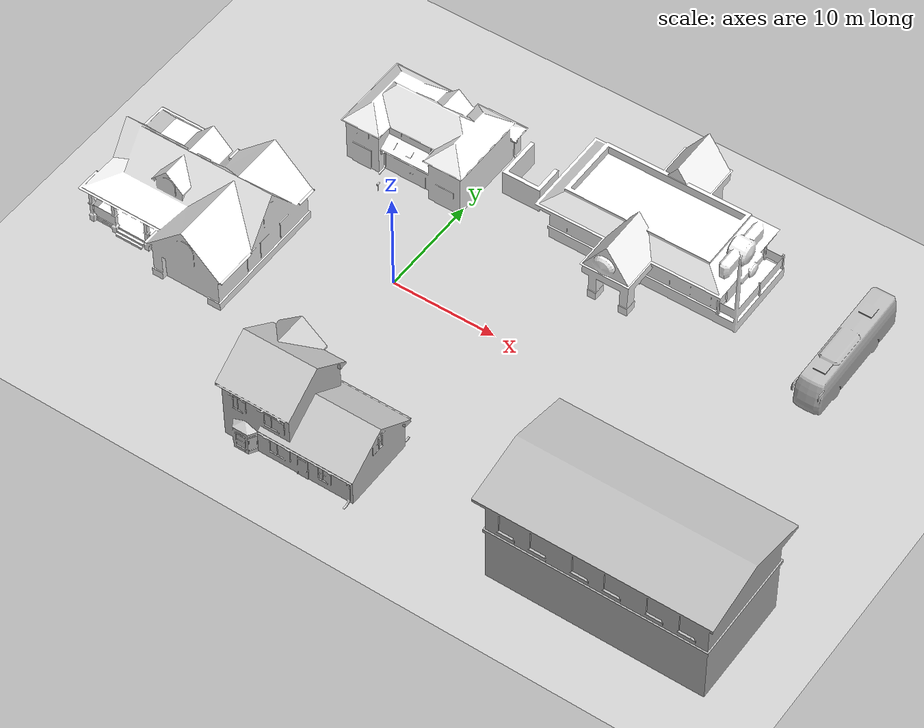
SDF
<sdf version="1.7">
 <world name="default">
  <light name="sun" type="directional">
   <pose>0 0 10 0 -0 0</pose>
   <diffuse>0.8 0.8 0.8 1</diffuse>
   <specular>0.2 0.2 0.2 1</specular>
   <attenuation>
    <range>1000</range>
    <constant>0.9</constant>
    <linear>0.01</linear>
    <quadratic>0.001</quadratic>
   </attenuation>
   <direction>-0.5 0.1 -0.9</direction>
   <spot><inner_angle>0</inner_angle><outer_angle>0</outer_angle><falloff>0</falloff></spot>
  </light>
  <model name="ground_plane">
   <static>1</static>
   <link name="link">
    <collision name="collision">
     <geometry><plane><normal>0 0 1</normal><size>100 100</size></plane></geometry>
     <surface>
      <contact><collide_bitmask>65535</collide_bitmask></contact>
      <friction><ode><mu>100</mu><mu2>50</mu2></ode></friction>
     </surface>
    </collision>
    <visual name="visual">
     <cast_shadows>0</cast_shadows>
     <geometry><plane><normal>0 0 1</normal><size>100 100</size></plane></geometry>
     <material>
      <script><uri>file://media/materials/scripts/gazebo.material</uri><name>Gazebo/Grey</name></script>
     </material>
    </visual>
   </link>
  </model>
  <gravity>0 0 -9.8</gravity>
  <magnetic_field>6e-06 2.3e-05 -4.2e-05</magnetic_field>
  <atmosphere type="adiabatic"/>
  <physics type="ode">
   <max_step_size>0.001</max_step_size>
   <real_time_factor>1</real_time_factor>
   <real_time_update_rate>1000</real_time_update_rate>
  </physics>
  <scene><ambient>0.4 0.4 0.4 1</ambient><background>0.7 0.7 0.7 1</background><shadows>1</shadows></scene>
  <spherical_coordinates>
   <surface_model>EARTH_WGS84</surface_model>
   <latitude_deg>0</latitude_deg>
   <longitude_deg>0</longitude_deg>
   <elevation>0</elevation>
   <heading_deg>0</heading_deg>
  </spherical_coordinates>
  <model name="House 1">
   <static>1</static>
   <link name="link">
    <collision name="collision">
     <geometry><mesh><uri>model://house_1/meshes/house_1.dae</uri><scale>1.5 1.5 1.5</scale></mesh></geometry>
    </collision>
    <visual name="visual">
     <geometry><mesh><uri>model://house_1/meshes/house_1.dae</uri><scale>1.5 1.5 1.5</scale></mesh></geometry>
     <material>
      <script>
       <uri>model://house_1/materials/scripts</uri>
       <uri>model://house_1/materials/textures</uri>
       <name>House_1/Diffuse</name>
      </script>
      <shader type="normal_map_tangent_space"><normal_map>House_1_Normal.png</normal_map></shader>
     </material>
    </visual>
   </link>
   <pose>-17.2492 -3.8179 0 0 -0 0</pose>
  </model>
  <model name="House 2">
   <static>1</static>
   <link name="link">
    <collision name="collision">
     <geometry><mesh><uri>model://house_2/meshes/house_2.dae</uri><scale>1.5 1.5 1.5</scale></mesh></geometry>
    </collision>
    <visual name="visual">
     <geometry><mesh><uri>model://house_2/meshes/house_2.dae</uri><scale>1.5 1.5 1.5</scale></mesh></geometry>
     <material>
      <script>
       <uri>model://house_2/materials/scripts</uri>
       <uri>model://house_2/materials/textures</uri>
       <uri>model://house_1/materials/textures</uri>
       <name>House_2/Diffuse</name>
      </script>
      <shader type="normal_map_tangent_space">
       <normal_map>model://house_1/materials/textures/House_1_Normal.png</normal_map>
      </shader>
     </material>
    </visual>
   </link>
   <pose>-6.62842 13.0432 0 0 -0 0</pose>
  </model>
  <model name="House 3">
   <static>1</static>
   <link name="link">
    <collision name="collision">
     <geometry><mesh><uri>model://house_3/meshes/house_3.dae</uri><scale>1.5 1.5 1.5</scale></mesh></geometry>
    </collision>
    <visual name="visual">
     <geometry><mesh><uri>model://house_3/meshes/house_3.dae</uri><scale>1.5 1.5 1.5</scale></mesh></geometry>
     <material>
      <script>
       <uri>model://house_3/materials/scripts</uri>
       <uri>model://house_3/materials/textures</uri>
       <uri>model://house_1/materials/textures</uri>
       <name>House_3/Diffuse</name>
      </script>
      <shader type="normal_map_tangent_space">
       <normal_map>model://house_1/materials/textures/House_1_Normal.png</normal_map>
      </shader>
     </material>
    </visual>
   </link>
   <pose>4.90346 -16.8976 0 0 -0 0</pose>
  </model>
  <model name="Mailbox">
   <link name="link">
    <collision name="collision">
     <geometry><mesh><uri>model://mailbox/meshes/mailbox.dae</uri></mesh></geometry>
    </collision>
    <visual name="visual">
     <geometry><mesh><uri>model://mailbox/meshes/mailbox.dae</uri></mesh></geometry>
     <material>
      <script>
       <uri>model://mailbox/materials/scripts</uri>
       <uri>model://mailbox/materials/textures</uri>
       <name>Mailbox/Diffuse</name>
      </script>
     </material>
    </visual>
    <inertial>
     <inertia><ixx>1</ixx><ixy>0</ixy><ixz>0</ixz><iyy>1</iyy><iyz>0</iyz><izz>1</izz></inertia>
     <mass>1</mass>
    </inertial>
   </link>
   <pose>-7.05086 7.55911 -0 -1e-05 -2e-06 0</pose>
  </model>
  <model name="Fast Food">
   <static>1</static>
   <link name="link">
    <pose>0 0 3.15931 0 -0 0</pose>
    <collision name="collision">
     <geometry><mesh><scale>3 3 2</scale><uri>model://fast_food/meshes/fast_food.dae</uri></mesh></geometry>
    </collision>
    <visual name="visual">
     <geometry><mesh><scale>3 3 2</scale><uri>model://fast_food/meshes/fast_food.dae</uri></mesh></geometry>
     <material>
      <script>
       <uri>model://fast_food/materials/scripts</uri>
       <uri>model://fast_food/materials/textures</uri>
       <name>FastFood/Diffuse</name>
      </script>
      <shader type="normal_map_tangent_space"><normal_map>FastFood_Normal.png</normal_map></shader>
     </material>
    </visual>
   </link>
   <pose>15.7052 15.194 0 0 -0 0</pose>
  </model>
  <model name="bus">
   <static>1</static>
   <link name="link">
    <collision name="collision">
     <geometry><mesh><scale>0.01 0.01 0.01</scale><uri>model://bus/meshes/bus.obj</uri></mesh></geometry>
    </collision>
    <visual name="visual">
     <geometry><mesh><scale>0.01 0.01 0.01</scale><uri>model://bus/meshes/bus.obj</uri></mesh></geometry>
    </visual>
   </link>
   <pose>34.896 13.4973 0 0 -0 0</pose>
  </model>
  <model name="fire_station">
   <static>1</static>
   <link name="link">
    <collision name="main">
     <pose>0 -0.135 5 0 -0 0</pose>
     <geometry><box><size>19.98 9.68 10</size></box></geometry>
    </collision>
    <collision name="front_top">
     <pose>0 4.957 7 0 -0 0</pose>
     <geometry><box><size>20 0.515 6</size></box></geometry>
    </collision>
    <collision name="column_0">
     <pose>9.333 4.957 2 0 -0 0</pose>
     <geometry><box><size>1.315 0.515 4</size></box></geometry>
    </collision>
    <collision name="column_1">
     <pose>3.33 4.957 2 0 -0 0</pose>
     <geometry><box><size>2.63 0.515 4</size></box></geometry>
    </collision>
    <collision name="column_2">
     <pose>-3.33 4.957 2 0 -0 0</pose>
     <geometry><box><size>2.63 0.515 4</size></box></geometry>
    </collision>
    <collision name="column_3">
     <pose>-9.333 4.957 2 0 -0 0</pose>
     <geometry><box><size>1.315 0.515 4</size></box></geometry>
    </collision>
    <collision name="roof_back">
     <pose>0 -2.742 10.467 0.25 -0 0</pose>
     <geometry><box><size>21.47 6.12 0.28</size></box></geometry>
    </collision>
    <collision name="roof_front">
     <pose>0 3.12 10.467 -0.25 0 0</pose>
     <geometry><box><size>21.47 6.12 0.28</size></box></geometry>
    </collision>
    <collision name="roof_base">
     <pose>0 0.188 9.705 0 -0 0</pose>
     <geometry><box><size>21.47 11.86 0.28</size></box></geometry>
    </collision>
    <collision name="roof_filling_0">
     <pose>0 0.188 9.985 0 -0 0</pose>
     <geometry><box><size>21.47 9.53 0.28</size></box></geometry>
    </collision>
    <collision name="roof_filling_1">
     <pose>0 0.188 10.14 0 -0 0</pose>
     <geometry><box><size>21.47 8.41 0.28</size></box></geometry>
    </collision>
    <collision name="roof_filling_2">
     <pose>0 0.188 10.42 0 -0 0</pose>
     <geometry><box><size>21.47 6.25 0.28</size></box></geometry>
    </collision>
    <collision name="roof_filling_3">
     <pose>0 0.188 10.7 0 -0 0</pose>
     <geometry><box><size>21.47 4.05 0.28</size></box></geometry>
    </collision>
    <collision name="roof_filling_4">
     <pose>0 0.188 10.98 0 -0 0</pose>
     <geometry><box><size>21.47 1.83 0.28</size></box></geometry>
    </collision>
    <visual name="visual">
     <geometry><mesh><uri>model://fire_station/meshes/fire_station.dae</uri></mesh></geometry>
    </visual>
   </link>
   <pose>33.0624 -15.2047 0 0 -0 0</pose>
  </model>
 </world>
</sdf>
